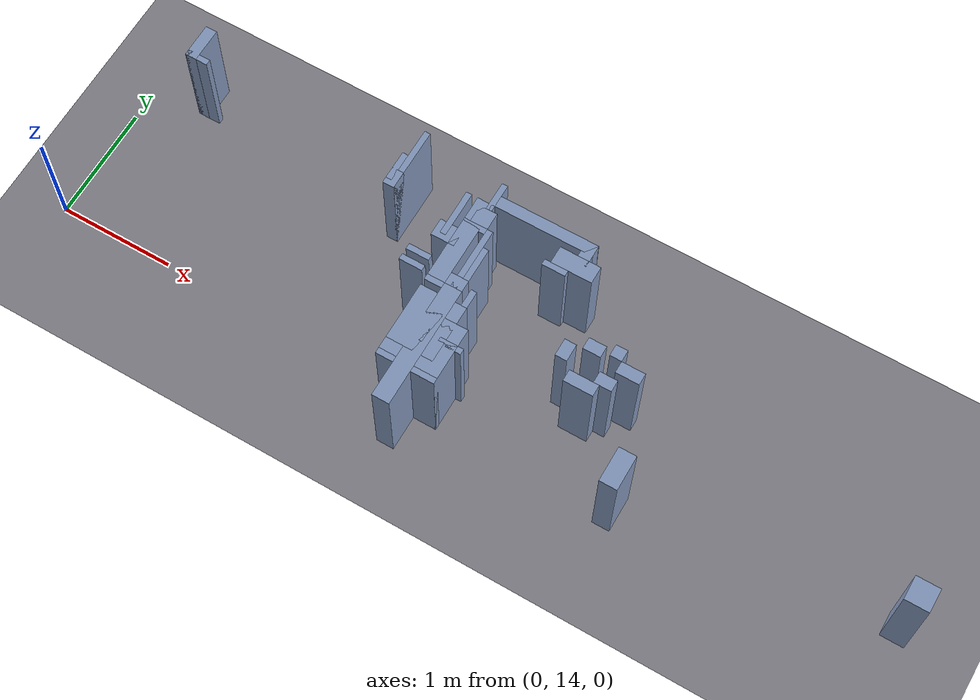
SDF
<sdf version="1.8">
 <world name="capture_fresh">
  <model name="ground_plane">
   <static>true</static>
   <link name="link">
    <collision name="collision">
     <geometry><plane><normal>0 0 1</normal><size>80 80</size></plane></geometry>
    </collision>
    <visual name="visual">
     <geometry><plane><normal>0 0 1</normal><size>80 80</size></plane></geometry>
     <material><ambient>0.40 0.40 0.42 1</ambient><diffuse>0.48 0.48 0.51 1</diffuse></material>
    </visual>
   </link>
  </model>
  <model name="obstacle_89">
   <static>true</static>
   <pose>0.532 15.333 0.450 0 0 0</pose>
   <link name="link">
    <collision name="collision"><geometry><box><size>0.200 0.050 0.900</size></box></geometry></collision>
    <visual name="visual">
     <geometry><box><size>0.200 0.050 0.900</size></box></geometry>
     <material>
      <ambient>0.42 0.48 0.58 1</ambient>
      <diffuse>0.50 0.58 0.72 1</diffuse>
      <specular>0.15 0.15 0.15 1</specular>
     </material>
    </visual>
   </link>
  </model>
  <model name="obstacle_93">
   <static>true</static>
   <pose>3.657 15.408 0.450 0 0 0</pose>
   <link name="link">
    <collision name="collision"><geometry><box><size>0.850 0.100 0.900</size></box></geometry></collision>
    <visual name="visual">
     <geometry><box><size>0.850 0.100 0.900</size></box></geometry>
     <material>
      <ambient>0.42 0.48 0.58 1</ambient>
      <diffuse>0.50 0.58 0.72 1</diffuse>
      <specular>0.15 0.15 0.15 1</specular>
     </material>
    </visual>
   </link>
  </model>
  <model name="obstacle_97">
   <static>true</static>
   <pose>0.482 15.458 0.450 0 0 0</pose>
   <link name="link">
    <collision name="collision"><geometry><box><size>0.100 0.300 0.900</size></box></geometry></collision>
    <visual name="visual">
     <geometry><box><size>0.100 0.300 0.900</size></box></geometry>
     <material>
      <ambient>0.42 0.48 0.58 1</ambient>
      <diffuse>0.50 0.58 0.72 1</diffuse>
      <specular>0.15 0.15 0.15 1</specular>
     </material>
    </visual>
   </link>
  </model>
  <model name="obstacle_101">
   <static>true</static>
   <pose>3.207 15.433 0.450 0 0 0</pose>
   <link name="link">
    <collision name="collision"><geometry><box><size>0.050 0.250 0.900</size></box></geometry></collision>
    <visual name="visual">
     <geometry><box><size>0.050 0.250 0.900</size></box></geometry>
     <material>
      <ambient>0.42 0.48 0.58 1</ambient>
      <diffuse>0.50 0.58 0.72 1</diffuse>
      <specular>0.15 0.15 0.15 1</specular>
     </material>
    </visual>
   </link>
  </model>
  <model name="obstacle_102">
   <static>true</static>
   <pose>3.182 15.133 0.450 0 0 0</pose>
   <link name="link">
    <collision name="collision"><geometry><box><size>0.200 0.050 0.900</size></box></geometry></collision>
    <visual name="visual">
     <geometry><box><size>0.200 0.050 0.900</size></box></geometry>
     <material>
      <ambient>0.42 0.48 0.58 1</ambient>
      <diffuse>0.50 0.58 0.72 1</diffuse>
      <specular>0.15 0.15 0.15 1</specular>
     </material>
    </visual>
   </link>
  </model>
  <model name="obstacle_103">
   <static>true</static>
   <pose>4.007 15.233 0.450 0 0 0</pose>
   <link name="link">
    <collision name="collision"><geometry><box><size>0.350 0.150 0.900</size></box></geometry></collision>
    <visual name="visual">
     <geometry><box><size>0.350 0.150 0.900</size></box></geometry>
     <material>
      <ambient>0.42 0.48 0.58 1</ambient>
      <diffuse>0.50 0.58 0.72 1</diffuse>
      <specular>0.15 0.15 0.15 1</specular>
     </material>
    </visual>
   </link>
  </model>
  <model name="obstacle_104">
   <static>true</static>
   <pose>3.882 15.133 0.450 0 0 0</pose>
   <link name="link">
    <collision name="collision"><geometry><box><size>0.200 0.050 0.900</size></box></geometry></collision>
    <visual name="visual">
     <geometry><box><size>0.200 0.050 0.900</size></box></geometry>
     <material>
      <ambient>0.42 0.48 0.58 1</ambient>
      <diffuse>0.50 0.58 0.72 1</diffuse>
      <specular>0.15 0.15 0.15 1</specular>
     </material>
    </visual>
   </link>
  </model>
  <model name="obstacle_105">
   <static>true</static>
   <pose>4.032 15.358 0.450 0 0 0</pose>
   <link name="link">
    <collision name="collision"><geometry><box><size>0.100 0.200 0.900</size></box></geometry></collision>
    <visual name="visual">
     <geometry><box><size>0.100 0.200 0.900</size></box></geometry>
     <material>
      <ambient>0.42 0.48 0.58 1</ambient>
      <diffuse>0.50 0.58 0.72 1</diffuse>
      <specular>0.15 0.15 0.15 1</specular>
     </material>
    </visual>
   </link>
  </model>
  <model name="obstacle_106">
   <static>true</static>
   <pose>2.407 15.283 0.450 0 0 0</pose>
   <link name="link">
    <collision name="collision"><geometry><box><size>0.050 0.250 0.900</size></box></geometry></collision>
    <visual name="visual">
     <geometry><box><size>0.050 0.250 0.900</size></box></geometry>
     <material>
      <ambient>0.42 0.48 0.58 1</ambient>
      <diffuse>0.50 0.58 0.72 1</diffuse>
      <specular>0.15 0.15 0.15 1</specular>
     </material>
    </visual>
   </link>
  </model>
  <model name="obstacle_107">
   <static>true</static>
   <pose>2.432 15.183 0.450 0 0 0</pose>
   <link name="link">
    <collision name="collision"><geometry><box><size>0.100 0.150 0.900</size></box></geometry></collision>
    <visual name="visual">
     <geometry><box><size>0.100 0.150 0.900</size></box></geometry>
     <material>
      <ambient>0.42 0.48 0.58 1</ambient>
      <diffuse>0.50 0.58 0.72 1</diffuse>
      <specular>0.15 0.15 0.15 1</specular>
     </material>
    </visual>
   </link>
  </model>
  <model name="obstacle_108">
   <static>true</static>
   <pose>3.207 15.233 0.450 0 0 0</pose>
   <link name="link">
    <collision name="collision"><geometry><box><size>0.150 0.150 0.900</size></box></geometry></collision>
    <visual name="visual">
     <geometry><box><size>0.150 0.150 0.900</size></box></geometry>
     <material>
      <ambient>0.42 0.48 0.58 1</ambient>
      <diffuse>0.50 0.58 0.72 1</diffuse>
      <specular>0.15 0.15 0.15 1</specular>
     </material>
    </visual>
   </link>
  </model>
  <model name="obstacle_109">
   <static>true</static>
   <pose>3.032 14.983 0.450 0 0 0</pose>
   <link name="link">
    <collision name="collision"><geometry><box><size>0.200 0.150 0.900</size></box></geometry></collision>
    <visual name="visual">
     <geometry><box><size>0.200 0.150 0.900</size></box></geometry>
     <material>
      <ambient>0.42 0.48 0.58 1</ambient>
      <diffuse>0.50 0.58 0.72 1</diffuse>
      <specular>0.15 0.15 0.15 1</specular>
     </material>
    </visual>
   </link>
  </model>
  <model name="obstacle_110">
   <static>true</static>
   <pose>3.157 14.983 0.450 0 0 0</pose>
   <link name="link">
    <collision name="collision"><geometry><box><size>0.150 0.750 0.900</size></box></geometry></collision>
    <visual name="visual">
     <geometry><box><size>0.150 0.750 0.900</size></box></geometry>
     <material>
      <ambient>0.42 0.48 0.58 1</ambient>
      <diffuse>0.50 0.58 0.72 1</diffuse>
      <specular>0.15 0.15 0.15 1</specular>
     </material>
    </visual>
   </link>
  </model>
  <model name="obstacle_111">
   <static>true</static>
   <pose>2.932 14.733 0.450 0 0 0</pose>
   <link name="link">
    <collision name="collision"><geometry><box><size>0.200 0.050 0.900</size></box></geometry></collision>
    <visual name="visual">
     <geometry><box><size>0.200 0.050 0.900</size></box></geometry>
     <material>
      <ambient>0.42 0.48 0.58 1</ambient>
      <diffuse>0.50 0.58 0.72 1</diffuse>
      <specular>0.15 0.15 0.15 1</specular>
     </material>
    </visual>
   </link>
  </model>
  <model name="obstacle_112">
   <static>true</static>
   <pose>4.632 14.758 0.450 0 0 0</pose>
   <link name="link">
    <collision name="collision"><geometry><box><size>0.100 0.100 0.900</size></box></geometry></collision>
    <visual name="visual">
     <geometry><box><size>0.100 0.100 0.900</size></box></geometry>
     <material>
      <ambient>0.42 0.48 0.58 1</ambient>
      <diffuse>0.50 0.58 0.72 1</diffuse>
      <specular>0.15 0.15 0.15 1</specular>
     </material>
    </visual>
   </link>
  </model>
  <model name="obstacle_113">
   <static>true</static>
   <pose>2.457 15.383 0.450 0 0 0</pose>
   <link name="link">
    <collision name="collision"><geometry><box><size>0.050 0.550 0.900</size></box></geometry></collision>
    <visual name="visual">
     <geometry><box><size>0.050 0.550 0.900</size></box></geometry>
     <material>
      <ambient>0.42 0.48 0.58 1</ambient>
      <diffuse>0.50 0.58 0.72 1</diffuse>
      <specular>0.15 0.15 0.15 1</specular>
     </material>
    </visual>
   </link>
  </model>
  <model name="obstacle_114">
   <static>true</static>
   <pose>3.007 15.158 0.450 0 0 0</pose>
   <link name="link">
    <collision name="collision"><geometry><box><size>0.050 0.400 0.900</size></box></geometry></collision>
    <visual name="visual">
     <geometry><box><size>0.050 0.400 0.900</size></box></geometry>
     <material>
      <ambient>0.42 0.48 0.58 1</ambient>
      <diffuse>0.50 0.58 0.72 1</diffuse>
      <specular>0.15 0.15 0.15 1</specular>
     </material>
    </visual>
   </link>
  </model>
  <model name="obstacle_115">
   <static>true</static>
   <pose>2.932 14.633 0.450 0 0 0</pose>
   <link name="link">
    <collision name="collision"><geometry><box><size>0.200 0.050 0.900</size></box></geometry></collision>
    <visual name="visual">
     <geometry><box><size>0.200 0.050 0.900</size></box></geometry>
     <material>
      <ambient>0.42 0.48 0.58 1</ambient>
      <diffuse>0.50 0.58 0.72 1</diffuse>
      <specular>0.15 0.15 0.15 1</specular>
     </material>
    </visual>
   </link>
  </model>
  <model name="obstacle_116">
   <static>true</static>
   <pose>4.457 14.708 0.450 0 0 0</pose>
   <link name="link">
    <collision name="collision"><geometry><box><size>0.150 0.100 0.900</size></box></geometry></collision>
    <visual name="visual">
     <geometry><box><size>0.150 0.100 0.900</size></box></geometry>
     <material>
      <ambient>0.42 0.48 0.58 1</ambient>
      <diffuse>0.50 0.58 0.72 1</diffuse>
      <specular>0.15 0.15 0.15 1</specular>
     </material>
    </visual>
   </link>
  </model>
  <model name="obstacle_117">
   <static>true</static>
   <pose>4.782 14.658 0.450 0 0 0</pose>
   <link name="link">
    <collision name="collision"><geometry><box><size>0.200 0.100 0.900</size></box></geometry></collision>
    <visual name="visual">
     <geometry><box><size>0.200 0.100 0.900</size></box></geometry>
     <material>
      <ambient>0.42 0.48 0.58 1</ambient>
      <diffuse>0.50 0.58 0.72 1</diffuse>
      <specular>0.15 0.15 0.15 1</specular>
     </material>
    </visual>
   </link>
  </model>
  <model name="obstacle_118">
   <static>true</static>
   <pose>3.232 14.633 0.450 0 0 0</pose>
   <link name="link">
    <collision name="collision"><geometry><box><size>0.300 0.150 0.900</size></box></geometry></collision>
    <visual name="visual">
     <geometry><box><size>0.300 0.150 0.900</size></box></geometry>
     <material>
      <ambient>0.42 0.48 0.58 1</ambient>
      <diffuse>0.50 0.58 0.72 1</diffuse>
      <specular>0.15 0.15 0.15 1</specular>
     </material>
    </visual>
   </link>
  </model>
  <model name="obstacle_119">
   <static>true</static>
   <pose>4.282 14.583 0.450 0 0 0</pose>
   <link name="link">
    <collision name="collision"><geometry><box><size>0.100 0.150 0.900</size></box></geometry></collision>
    <visual name="visual">
     <geometry><box><size>0.100 0.150 0.900</size></box></geometry>
     <material>
      <ambient>0.42 0.48 0.58 1</ambient>
      <diffuse>0.50 0.58 0.72 1</diffuse>
      <specular>0.15 0.15 0.15 1</specular>
     </material>
    </visual>
   </link>
  </model>
  <model name="obstacle_120">
   <static>true</static>
   <pose>4.657 14.508 0.450 0 0 0</pose>
   <link name="link">
    <collision name="collision"><geometry><box><size>0.150 0.100 0.900</size></box></geometry></collision>
    <visual name="visual">
     <geometry><box><size>0.150 0.100 0.900</size></box></geometry>
     <material>
      <ambient>0.42 0.48 0.58 1</ambient>
      <diffuse>0.50 0.58 0.72 1</diffuse>
      <specular>0.15 0.15 0.15 1</specular>
     </material>
    </visual>
   </link>
  </model>
  <model name="obstacle_121">
   <static>true</static>
   <pose>4.507 14.408 0.450 0 0 0</pose>
   <link name="link">
    <collision name="collision"><geometry><box><size>0.250 0.100 0.900</size></box></geometry></collision>
    <visual name="visual">
     <geometry><box><size>0.250 0.100 0.900</size></box></geometry>
     <material>
      <ambient>0.42 0.48 0.58 1</ambient>
      <diffuse>0.50 0.58 0.72 1</diffuse>
      <specular>0.15 0.15 0.15 1</specular>
     </material>
    </visual>
   </link>
  </model>
  <model name="obstacle_122">
   <static>true</static>
   <pose>3.357 14.783 0.450 0 0 0</pose>
   <link name="link">
    <collision name="collision"><geometry><box><size>0.050 0.450 0.900</size></box></geometry></collision>
    <visual name="visual">
     <geometry><box><size>0.050 0.450 0.900</size></box></geometry>
     <material>
      <ambient>0.42 0.48 0.58 1</ambient>
      <diffuse>0.50 0.58 0.72 1</diffuse>
      <specular>0.15 0.15 0.15 1</specular>
     </material>
    </visual>
   </link>
  </model>
  <model name="obstacle_123">
   <static>true</static>
   <pose>3.532 14.183 0.450 0 0 0</pose>
   <link name="link">
    <collision name="collision"><geometry><box><size>0.200 0.050 0.900</size></box></geometry></collision>
    <visual name="visual">
     <geometry><box><size>0.200 0.050 0.900</size></box></geometry>
     <material>
      <ambient>0.42 0.48 0.58 1</ambient>
      <diffuse>0.50 0.58 0.72 1</diffuse>
      <specular>0.15 0.15 0.15 1</specular>
     </material>
    </visual>
   </link>
  </model>
  <model name="obstacle_124">
   <static>true</static>
   <pose>7.332 14.208 0.450 0 0 0</pose>
   <link name="link">
    <collision name="collision"><geometry><box><size>0.200 0.200 0.900</size></box></geometry></collision>
    <visual name="visual">
     <geometry><box><size>0.200 0.200 0.900</size></box></geometry>
     <material>
      <ambient>0.42 0.48 0.58 1</ambient>
      <diffuse>0.50 0.58 0.72 1</diffuse>
      <specular>0.15 0.15 0.15 1</specular>
     </material>
    </visual>
   </link>
  </model>
  <model name="obstacle_125">
   <static>true</static>
   <pose>3.307 14.083 0.450 0 0 0</pose>
   <link name="link">
    <collision name="collision"><geometry><box><size>0.150 1.050 0.900</size></box></geometry></collision>
    <visual name="visual">
     <geometry><box><size>0.150 1.050 0.900</size></box></geometry>
     <material>
      <ambient>0.42 0.48 0.58 1</ambient>
      <diffuse>0.50 0.58 0.72 1</diffuse>
      <specular>0.15 0.15 0.15 1</specular>
     </material>
    </visual>
   </link>
  </model>
  <model name="obstacle_126">
   <static>true</static>
   <pose>3.157 13.958 0.450 0 0 0</pose>
   <link name="link">
    <collision name="collision"><geometry><box><size>0.150 0.100 0.900</size></box></geometry></collision>
    <visual name="visual">
     <geometry><box><size>0.150 0.100 0.900</size></box></geometry>
     <material>
      <ambient>0.42 0.48 0.58 1</ambient>
      <diffuse>0.50 0.58 0.72 1</diffuse>
      <specular>0.15 0.15 0.15 1</specular>
     </material>
    </visual>
   </link>
  </model>
  <model name="obstacle_127">
   <static>true</static>
   <pose>3.332 13.883 0.450 0 0 0</pose>
   <link name="link">
    <collision name="collision"><geometry><box><size>0.500 0.050 0.900</size></box></geometry></collision>
    <visual name="visual">
     <geometry><box><size>0.500 0.050 0.900</size></box></geometry>
     <material>
      <ambient>0.42 0.48 0.58 1</ambient>
      <diffuse>0.50 0.58 0.72 1</diffuse>
      <specular>0.15 0.15 0.15 1</specular>
     </material>
    </visual>
   </link>
  </model>
  <model name="obstacle_128">
   <static>true</static>
   <pose>3.282 14.258 0.450 0 0 0</pose>
   <link name="link">
    <collision name="collision"><geometry><box><size>0.400 0.500 0.900</size></box></geometry></collision>
    <visual name="visual">
     <geometry><box><size>0.400 0.500 0.900</size></box></geometry>
     <material>
      <ambient>0.42 0.48 0.58 1</ambient>
      <diffuse>0.50 0.58 0.72 1</diffuse>
      <specular>0.15 0.15 0.15 1</specular>
     </material>
    </visual>
   </link>
  </model>
  <model name="obstacle_130">
   <static>true</static>
   <pose>5.057 13.958 0.450 0 0 0</pose>
   <link name="link">
    <collision name="collision"><geometry><box><size>0.150 0.300 0.900</size></box></geometry></collision>
    <visual name="visual">
     <geometry><box><size>0.150 0.300 0.900</size></box></geometry>
     <material>
      <ambient>0.42 0.48 0.58 1</ambient>
      <diffuse>0.50 0.58 0.72 1</diffuse>
      <specular>0.15 0.15 0.15 1</specular>
     </material>
    </visual>
   </link>
  </model>
  <model name="obstacle_137">
   <static>true</static>
   <pose>3.482 14.108 0.450 0 0 0</pose>
   <link name="link">
    <collision name="collision"><geometry><box><size>0.200 0.500 0.900</size></box></geometry></collision>
    <visual name="visual">
     <geometry><box><size>0.200 0.500 0.900</size></box></geometry>
     <material>
      <ambient>0.42 0.48 0.58 1</ambient>
      <diffuse>0.50 0.58 0.72 1</diffuse>
      <specular>0.15 0.15 0.15 1</specular>
     </material>
    </visual>
   </link>
  </model>
  <model name="obstacle_144">
   <static>true</static>
   <pose>3.457 14.333 0.450 0 0 0</pose>
   <link name="link">
    <collision name="collision"><geometry><box><size>0.050 0.650 0.900</size></box></geometry></collision>
    <visual name="visual">
     <geometry><box><size>0.050 0.650 0.900</size></box></geometry>
     <material>
      <ambient>0.42 0.48 0.58 1</ambient>
      <diffuse>0.50 0.58 0.72 1</diffuse>
      <specular>0.15 0.15 0.15 1</specular>
     </material>
    </visual>
   </link>
  </model>
  <model name="obstacle_151">
   <static>true</static>
   <pose>3.307 14.633 0.450 0 0 0</pose>
   <link name="link">
    <collision name="collision"><geometry><box><size>0.050 1.050 0.900</size></box></geometry></collision>
    <visual name="visual">
     <geometry><box><size>0.050 1.050 0.900</size></box></geometry>
     <material>
      <ambient>0.42 0.48 0.58 1</ambient>
      <diffuse>0.50 0.58 0.72 1</diffuse>
      <specular>0.15 0.15 0.15 1</specular>
     </material>
    </visual>
   </link>
  </model>
 </world>
</sdf>
